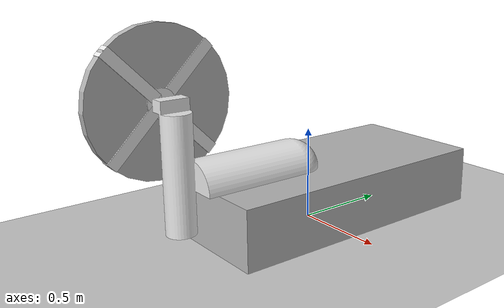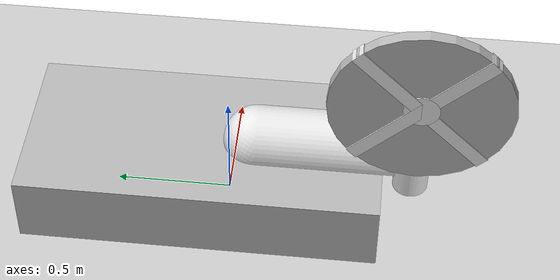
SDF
<sdf version="1.6">
 <world name="task6_world">
  <light name="sun" type="directional">
   <pose>0 0 10 0 -0 0</pose>
   <diffuse>0.8 0.8 0.8 1</diffuse>
   <specular>0.2 0.2 0.2 1</specular>
   <attenuation>
    <range>1000</range>
    <constant>0.9</constant>
    <linear>0.01</linear>
    <quadratic>0.001</quadratic>
   </attenuation>
   <direction>-0.5 0.1 -0.9</direction>
   <spot><inner_angle>0</inner_angle><outer_angle>0</outer_angle><falloff>0</falloff></spot>
  </light>
  <model name="ground_plane">
   <static>1</static>
   <link name="link">
    <collision name="collision">
     <geometry><plane><normal>0 0 1</normal><size>100 100</size></plane></geometry>
     <surface>
      <contact><collide_bitmask>65535</collide_bitmask></contact>
      <friction><ode><mu>100</mu><mu2>50</mu2></ode></friction>
     </surface>
    </collision>
    <visual name="visual">
     <cast_shadows>0</cast_shadows>
     <geometry><plane><normal>0 0 1</normal><size>100 100</size></plane></geometry>
     <material>
      <script><uri>file://media/materials/scripts/gazebo.material</uri><name>Gazebo/Grey</name></script>
     </material>
    </visual>
   </link>
  </model>
  <gravity>0 0 -9.8</gravity>
  <magnetic_field>6e-06 2.3e-05 -4.2e-05</magnetic_field>
  <atmosphere type="adiabatic"/>
  <physics type="ode">
   <max_step_size>0.001</max_step_size>
   <real_time_factor>1</real_time_factor>
   <real_time_update_rate>1000</real_time_update_rate>
  </physics>
  <scene><ambient>0.4 0.4 0.4 1</ambient><background>0.7 0.7 0.7 1</background><shadows>1</shadows></scene>
  <spherical_coordinates>
   <surface_model>EARTH_WGS84</surface_model>
   <latitude_deg>0</latitude_deg>
   <longitude_deg>0</longitude_deg>
   <elevation>0</elevation>
   <heading_deg>0</heading_deg>
  </spherical_coordinates>
  <include><uri>model://task7_model</uri><pose>0 0 0 1.57 0 0</pose></include>
 </world>
</sdf>

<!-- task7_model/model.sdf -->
<sdf version="1.6">
  <model name="Task7_model">
    <static>true</static>
    <pose>0 0 0 1.57 0 1.57</pose>

    <link name="Base">
    <pose>0 0 0 -1.57 0 0</pose>
      <collision name="body_collision">
        <geometry>
          <box>
            <size>1 1 1</size>
          </box>
        </geometry>
      </collision>
      <visual name="base">
        <pose>0 0 0 0 0 0</pose>
        <geometry>
          <mesh>
            <uri>model://task7_model/meshes/SeaSentinel_TASK7_base.stl</uri>
            <scale>0.0001 0.0001 0.0001</scale>
          </mesh>
        </geometry>
        <material>
        <script>
            <uri>model://task7_model/materials/scripts</uri>
            <uri>model://task7_model/materials/textures</uri>
            <name>DockBase/Image</name>
        </script>
        </material>
      </visual>
    </link>

    <link name="Pipes">
      <pose>0 0 0 -1.57 0 0</pose>
      <collision name="body_collision">
        <geometry>
          <box>
            <size>1 1 1</size>
          </box>
        </geometry>
      </collision>
      <visual name="Pipes">
        <pose>0 0 0 0 0 0</pose>
        <geometry>
          <mesh>
            <uri>model://task7_model/meshes/SeaSentinel_TASK7_rest.stl</uri>
            <scale>0.0001 0.0001 0.0001</scale>
          </mesh>
        </geometry>
        <material>
        <script>
            <uri>file://media/materials/scripts/gazebo.material</uri>
            <name>Gazebo/White</name>
        </script>
        </material>
      </visual>
    </link>

  <model name="Target">
    <static>true</static>
    <pose>-0.05 -0.07 0 0 0 0</pose>
    <link name="target base">
      <pose>-0.1 0.8 0.8 0 1.57 0</pose>
      <collision name="body_collision">
        <geometry>
          <cylinder>
            <length>0.05</length>
            <radius>0.381</radius>
          </cylinder>
        </geometry>
      </collision>
      <visual name="target base">
        <geometry>
          <cylinder>
            <length>0.05</length>
            <radius>0.381</radius>
          </cylinder>
        </geometry>
        <material>
        <script>
            <uri>model://task7_model/materials/scripts</uri>
            <uri>model://task7_model/materials/textures</uri>
            <name>Target/Image</name>
        </script>
        </material>
      </visual>
    </link>

    <link name="Target whole">
      <pose>-0.1 0.8 0.8 0 1.57 0</pose>
      <collision name="body_collision">
        <geometry>
          <cylinder>
            <length>0.06</length>
            <radius>0.075</radius>
          </cylinder>
        </geometry>
      </collision>
      <visual name="target whole">
        <geometry>
          <cylinder>
            <length>0.06</length>
            <radius>0.075</radius>
          </cylinder>
        </geometry>
        <material>
          <script>
            <uri>file://media/materials/scripts/gazebo.material</uri>
            <name>Gazebo/White</name>
          </script>
        </material>
      </visual>
    </link>

    <link name="Target Stripe">
      <pose>-0.1 0.8 0.8 0.785 0 0</pose>
      <collision name="body_collision">
        <geometry>
          <box>
            <size>0.06 0.76 0.06</size>
          </box>
        </geometry>
      </collision>
      <visual name="target stripe">
        <geometry>
          <box>
            <size>0.06 0.76 0.06</size>
          </box>
        </geometry>
        <material>
          <script>
            <uri>file://media/materials/scripts/gazebo.material</uri>
            <name>Gazebo/White</name>
          </script>
        </material>
      </visual>
    </link>

    <link name="Target stripe 2">
      <pose>-0.1 0.8 0.8 -0.785 0 0</pose>
      <collision name="body_collision">
        <geometry>
          <box>
            <size>0.06 0.76 0.06</size>
          </box>
        </geometry>
      </collision>
      <visual name="target stripe 2">
        <geometry>
          <box>
            <size>0.06 0.76 0.06</size>
          </box>
        </geometry>
        <material>
          <script>
            <uri>file://media/materials/scripts/gazebo.material</uri>
            <name>Gazebo/White</name>
          </script>
        </material>
      </visual>
    </link>
  </model>
  </model>
</sdf>
